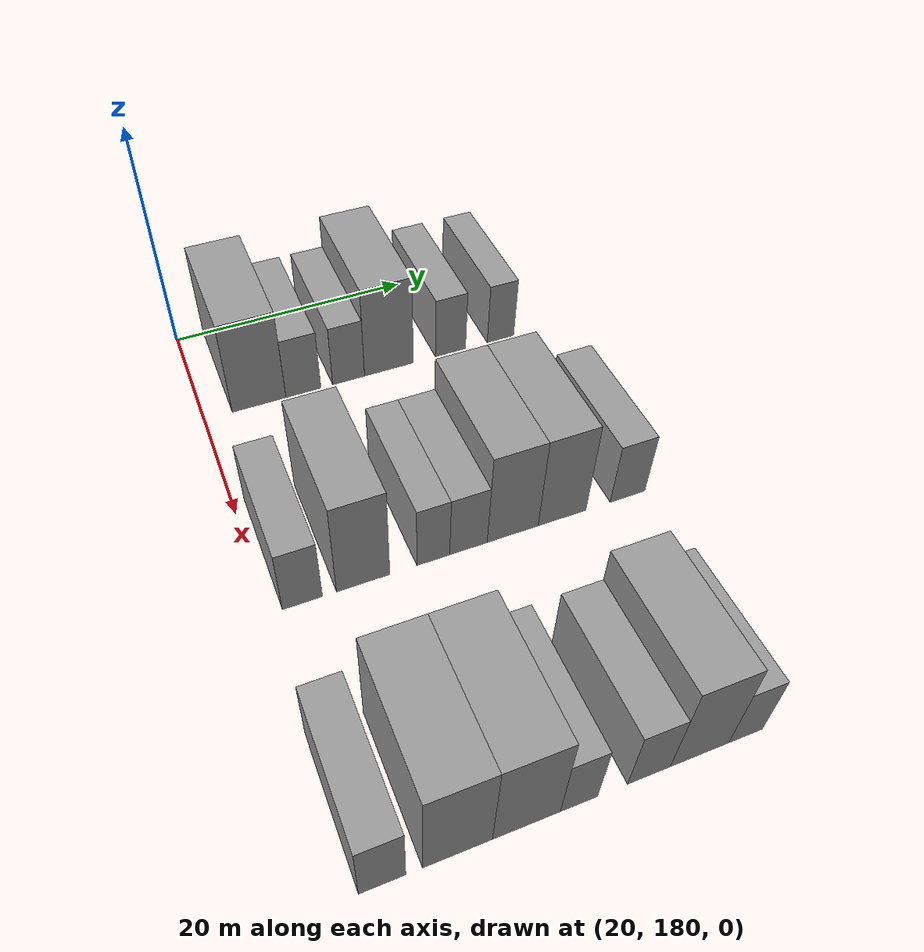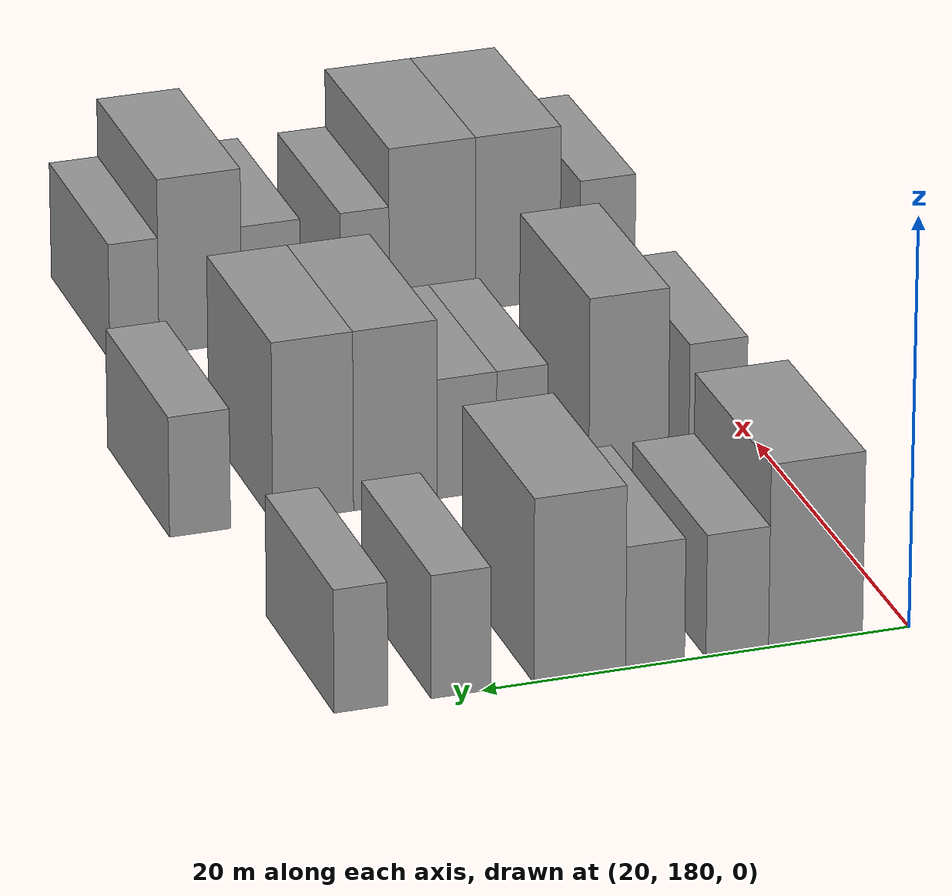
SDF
<sdf version="1.6">
 <world name="default">
  <model name="building_99">
   <static>1</static>
   <pose>25.0000 184.4564 0 0.000000 0.000000 0.000000</pose>
   <link name="link">
    <pose>0 0 4.50 0 0 0</pose>
    <collision name="collision"><geometry><box><size>10.0000 4.4270 9.0000</size></box></geometry></collision>
    <visual name="visual">
     <cast_shadows>0</cast_shadows>
     <geometry><box><size>10.0000 4.4270 9.0000</size></box></geometry>
     <material>
      <script>
       <uri>model://grey_wall/materials/scripts</uri>
       <uri>model://grey_wall/materials/textures</uri>
       <name>vrc/grey_wall</name>
      </script>
     </material>
    </visual>
   </link>
  </model>
  <model name="building_100">
   <static>1</static>
   <pose>25.0000 188.1384 0 0.000000 0.000000 0.000000</pose>
   <link name="link">
    <pose>0 0 3.00 0 0 0</pose>
    <collision name="collision"><geometry><box><size>10.0000 2.9370 6.0000</size></box></geometry></collision>
    <visual name="visual">
     <cast_shadows>0</cast_shadows>
     <geometry><box><size>10.0000 2.9370 6.0000</size></box></geometry>
     <material>
      <script>
       <uri>model://grey_wall/materials/scripts</uri>
       <uri>model://grey_wall/materials/textures</uri>
       <name>vrc/grey_wall</name>
      </script>
     </material>
    </visual>
   </link>
  </model>
  <model name="building_101">
   <static>1</static>
   <pose>25.0000 191.9836 0 0.000000 0.000000 0.000000</pose>
   <link name="link">
    <pose>0 0 3.00 0 0 0</pose>
    <collision name="collision"><geometry><box><size>10.0000 2.7534 6.0000</size></box></geometry></collision>
    <visual name="visual">
     <cast_shadows>0</cast_shadows>
     <geometry><box><size>10.0000 2.7534 6.0000</size></box></geometry>
     <material>
      <script>
       <uri>model://grey_wall/materials/scripts</uri>
       <uri>model://grey_wall/materials/textures</uri>
       <name>vrc/grey_wall</name>
      </script>
     </material>
    </visual>
   </link>
  </model>
  <model name="building_102">
   <static>1</static>
   <pose>25.0000 195.4901 0 0.000000 0.000000 0.000000</pose>
   <link name="link">
    <pose>0 0 4.50 0 0 0</pose>
    <collision name="collision"><geometry><box><size>10.0000 4.2597 9.0000</size></box></geometry></collision>
    <visual name="visual">
     <cast_shadows>0</cast_shadows>
     <geometry><box><size>10.0000 4.2597 9.0000</size></box></geometry>
     <material>
      <script>
       <uri>model://grey_wall/materials/scripts</uri>
       <uri>model://grey_wall/materials/textures</uri>
       <name>vrc/grey_wall</name>
      </script>
     </material>
    </visual>
   </link>
  </model>
  <model name="building_103">
   <static>1</static>
   <pose>25.0000 200.9903 0 0.000000 0.000000 0.000000</pose>
   <link name="link">
    <pose>0 0 3.00 0 0 0</pose>
    <collision name="collision"><geometry><box><size>10.0000 2.7407 6.0000</size></box></geometry></collision>
    <visual name="visual">
     <cast_shadows>0</cast_shadows>
     <geometry><box><size>10.0000 2.7407 6.0000</size></box></geometry>
     <material>
      <script>
       <uri>model://grey_wall/materials/scripts</uri>
       <uri>model://grey_wall/materials/textures</uri>
       <name>vrc/grey_wall</name>
      </script>
     </material>
    </visual>
   </link>
  </model>
  <model name="building_104">
   <static>1</static>
   <pose>25.0000 205.5927 0 0.000000 0.000000 0.000000</pose>
   <link name="link">
    <pose>0 0 3.00 0 0 0</pose>
    <collision name="collision"><geometry><box><size>10.0000 2.4640 6.0000</size></box></geometry></collision>
    <visual name="visual">
     <cast_shadows>0</cast_shadows>
     <geometry><box><size>10.0000 2.4640 6.0000</size></box></geometry>
     <material>
      <script>
       <uri>model://grey_wall/materials/scripts</uri>
       <uri>model://grey_wall/materials/textures</uri>
       <name>vrc/grey_wall</name>
      </script>
     </material>
    </visual>
   </link>
  </model>
  <model name="building_204">
   <static>1</static>
   <pose>44.0000 182.2831 0 0.000000 0.000000 0.000000</pose>
   <link name="link">
    <pose>0 0 3.00 0 0 0</pose>
    <collision name="collision"><geometry><box><size>10.0000 2.8177 6.0000</size></box></geometry></collision>
    <visual name="visual">
     <cast_shadows>0</cast_shadows>
     <geometry><box><size>10.0000 2.8177 6.0000</size></box></geometry>
     <material>
      <script>
       <uri>model://grey_wall/materials/scripts</uri>
       <uri>model://grey_wall/materials/textures</uri>
       <name>vrc/grey_wall</name>
      </script>
     </material>
    </visual>
   </link>
  </model>
  <model name="building_205">
   <static>1</static>
   <pose>44.0000 186.6218 0 0.000000 0.000000 0.000000</pose>
   <link name="link">
    <pose>0 0 4.50 0 0 0</pose>
    <collision name="collision"><geometry><box><size>10.0000 3.8597 9.0000</size></box></geometry></collision>
    <visual name="visual">
     <cast_shadows>0</cast_shadows>
     <geometry><box><size>10.0000 3.8597 9.0000</size></box></geometry>
     <material>
      <script>
       <uri>model://grey_wall/materials/scripts</uri>
       <uri>model://grey_wall/materials/textures</uri>
       <name>vrc/grey_wall</name>
      </script>
     </material>
    </visual>
   </link>
  </model>
  <model name="building_206">
   <static>1</static>
   <pose>44.0000 191.7839 0 0.000000 0.000000 0.000000</pose>
   <link name="link">
    <pose>0 0 3.00 0 0 0</pose>
    <collision name="collision"><geometry><box><size>10.0000 2.4646 6.0000</size></box></geometry></collision>
    <visual name="visual">
     <cast_shadows>0</cast_shadows>
     <geometry><box><size>10.0000 2.4646 6.0000</size></box></geometry>
     <material>
      <script>
       <uri>model://grey_wall/materials/scripts</uri>
       <uri>model://grey_wall/materials/textures</uri>
       <name>vrc/grey_wall</name>
      </script>
     </material>
    </visual>
   </link>
  </model>
  <model name="building_207">
   <static>1</static>
   <pose>44.0000 194.4527 0 0.000000 0.000000 0.000000</pose>
   <link name="link">
    <pose>0 0 3.00 0 0 0</pose>
    <collision name="collision"><geometry><box><size>10.0000 2.8730 6.0000</size></box></geometry></collision>
    <visual name="visual">
     <cast_shadows>0</cast_shadows>
     <geometry><box><size>10.0000 2.8730 6.0000</size></box></geometry>
     <material>
      <script>
       <uri>model://grey_wall/materials/scripts</uri>
       <uri>model://grey_wall/materials/textures</uri>
       <name>vrc/grey_wall</name>
      </script>
     </material>
    </visual>
   </link>
  </model>
  <model name="building_208">
   <static>1</static>
   <pose>44.0000 197.8874 0 0.000000 0.000000 0.000000</pose>
   <link name="link">
    <pose>0 0 4.50 0 0 0</pose>
    <collision name="collision"><geometry><box><size>10.0000 3.9965 9.0000</size></box></geometry></collision>
    <visual name="visual">
     <cast_shadows>0</cast_shadows>
     <geometry><box><size>10.0000 3.9965 9.0000</size></box></geometry>
     <material>
      <script>
       <uri>model://grey_wall/materials/scripts</uri>
       <uri>model://grey_wall/materials/textures</uri>
       <name>vrc/grey_wall</name>
      </script>
     </material>
    </visual>
   </link>
  </model>
  <model name="building_209">
   <static>1</static>
   <pose>44.0000 201.8138 0 0.000000 0.000000 0.000000</pose>
   <link name="link">
    <pose>0 0 4.50 0 0 0</pose>
    <collision name="collision"><geometry><box><size>10.0000 3.8562 9.0000</size></box></geometry></collision>
    <visual name="visual">
     <cast_shadows>0</cast_shadows>
     <geometry><box><size>10.0000 3.8562 9.0000</size></box></geometry>
     <material>
      <script>
       <uri>model://grey_wall/materials/scripts</uri>
       <uri>model://grey_wall/materials/textures</uri>
       <name>vrc/grey_wall</name>
      </script>
     </material>
    </visual>
   </link>
  </model>
  <model name="building_210">
   <static>1</static>
   <pose>44.0000 207.1865 0 0.000000 0.000000 0.000000</pose>
   <link name="link">
    <pose>0 0 3.00 0 0 0</pose>
    <collision name="collision"><geometry><box><size>10.0000 2.8893 6.0000</size></box></geometry></collision>
    <visual name="visual">
     <cast_shadows>0</cast_shadows>
     <geometry><box><size>10.0000 2.8893 6.0000</size></box></geometry>
     <material>
      <script>
       <uri>model://grey_wall/materials/scripts</uri>
       <uri>model://grey_wall/materials/textures</uri>
       <name>vrc/grey_wall</name>
      </script>
     </material>
    </visual>
   </link>
  </model>
  <model name="building_315">
   <static>1</static>
   <pose>63.0000 181.0948 0 0.000000 0.000000 0.000000</pose>
   <link name="link">
    <pose>0 0 3.00 0 0 0</pose>
    <collision name="collision"><geometry><box><size>10.0000 2.7734 6.0000</size></box></geometry></collision>
    <visual name="visual">
     <cast_shadows>0</cast_shadows>
     <geometry><box><size>10.0000 2.7734 6.0000</size></box></geometry>
     <material>
      <script>
       <uri>model://grey_wall/materials/scripts</uri>
       <uri>model://grey_wall/materials/textures</uri>
       <name>vrc/grey_wall</name>
      </script>
     </material>
    </visual>
   </link>
  </model>
  <model name="building_316">
   <static>1</static>
   <pose>63.0000 185.6135 0 0.000000 0.000000 0.000000</pose>
   <link name="link">
    <pose>0 0 4.50 0 0 0</pose>
    <collision name="collision"><geometry><box><size>10.0000 4.2639 9.0000</size></box></geometry></collision>
    <visual name="visual">
     <cast_shadows>0</cast_shadows>
     <geometry><box><size>10.0000 4.2639 9.0000</size></box></geometry>
     <material>
      <script>
       <uri>model://grey_wall/materials/scripts</uri>
       <uri>model://grey_wall/materials/textures</uri>
       <name>vrc/grey_wall</name>
      </script>
     </material>
    </visual>
   </link>
  </model>
  <model name="building_317">
   <static>1</static>
   <pose>63.0000 189.9021 0 0.000000 0.000000 0.000000</pose>
   <link name="link">
    <pose>0 0 4.50 0 0 0</pose>
    <collision name="collision"><geometry><box><size>10.0000 4.3133 9.0000</size></box></geometry></collision>
    <visual name="visual">
     <cast_shadows>0</cast_shadows>
     <geometry><box><size>10.0000 4.3133 9.0000</size></box></geometry>
     <material>
      <script>
       <uri>model://grey_wall/materials/scripts</uri>
       <uri>model://grey_wall/materials/textures</uri>
       <name>vrc/grey_wall</name>
      </script>
     </material>
    </visual>
   </link>
  </model>
  <model name="building_318">
   <static>1</static>
   <pose>63.0000 193.2691 0 0.000000 0.000000 0.000000</pose>
   <link name="link">
    <pose>0 0 3.00 0 0 0</pose>
    <collision name="collision"><geometry><box><size>10.0000 2.4207 6.0000</size></box></geometry></collision>
    <visual name="visual">
     <cast_shadows>0</cast_shadows>
     <geometry><box><size>10.0000 2.4207 6.0000</size></box></geometry>
     <material>
      <script>
       <uri>model://grey_wall/materials/scripts</uri>
       <uri>model://grey_wall/materials/textures</uri>
       <name>vrc/grey_wall</name>
      </script>
     </material>
    </visual>
   </link>
  </model>
  <model name="building_319">
   <static>1</static>
   <pose>63.0000 197.9280 0 0.000000 0.000000 0.000000</pose>
   <link name="link">
    <pose>0 0 3.00 0 0 0</pose>
    <collision name="collision"><geometry><box><size>10.0000 2.8972 6.0000</size></box></geometry></collision>
    <visual name="visual">
     <cast_shadows>0</cast_shadows>
     <geometry><box><size>10.0000 2.8972 6.0000</size></box></geometry>
     <material>
      <script>
       <uri>model://grey_wall/materials/scripts</uri>
       <uri>model://grey_wall/materials/textures</uri>
       <name>vrc/grey_wall</name>
      </script>
     </material>
    </visual>
   </link>
  </model>
  <model name="building_320">
   <static>1</static>
   <pose>63.0000 201.4205 0 0.000000 0.000000 0.000000</pose>
   <link name="link">
    <pose>0 0 4.50 0 0 0</pose>
    <collision name="collision"><geometry><box><size>10.0000 4.0877 9.0000</size></box></geometry></collision>
    <visual name="visual">
     <cast_shadows>0</cast_shadows>
     <geometry><box><size>10.0000 4.0877 9.0000</size></box></geometry>
     <material>
      <script>
       <uri>model://grey_wall/materials/scripts</uri>
       <uri>model://grey_wall/materials/textures</uri>
       <name>vrc/grey_wall</name>
      </script>
     </material>
    </visual>
   </link>
  </model>
  <model name="building_321">
   <static>1</static>
   <pose>63.0000 204.6721 0 0.000000 0.000000 0.000000</pose>
   <link name="link">
    <pose>0 0 3.00 0 0 0</pose>
    <collision name="collision"><geometry><box><size>10.0000 2.4155 6.0000</size></box></geometry></collision>
    <visual name="visual">
     <cast_shadows>0</cast_shadows>
     <geometry><box><size>10.0000 2.4155 6.0000</size></box></geometry>
     <material>
      <script>
       <uri>model://grey_wall/materials/scripts</uri>
       <uri>model://grey_wall/materials/textures</uri>
       <name>vrc/grey_wall</name>
      </script>
     </material>
    </visual>
   </link>
  </model>
 </world>
</sdf>
